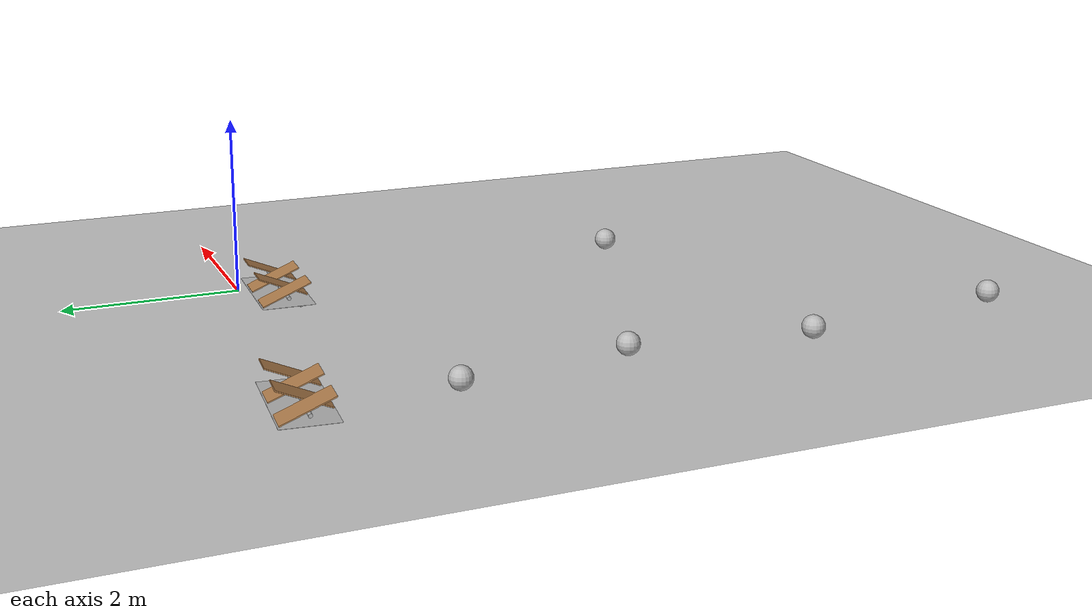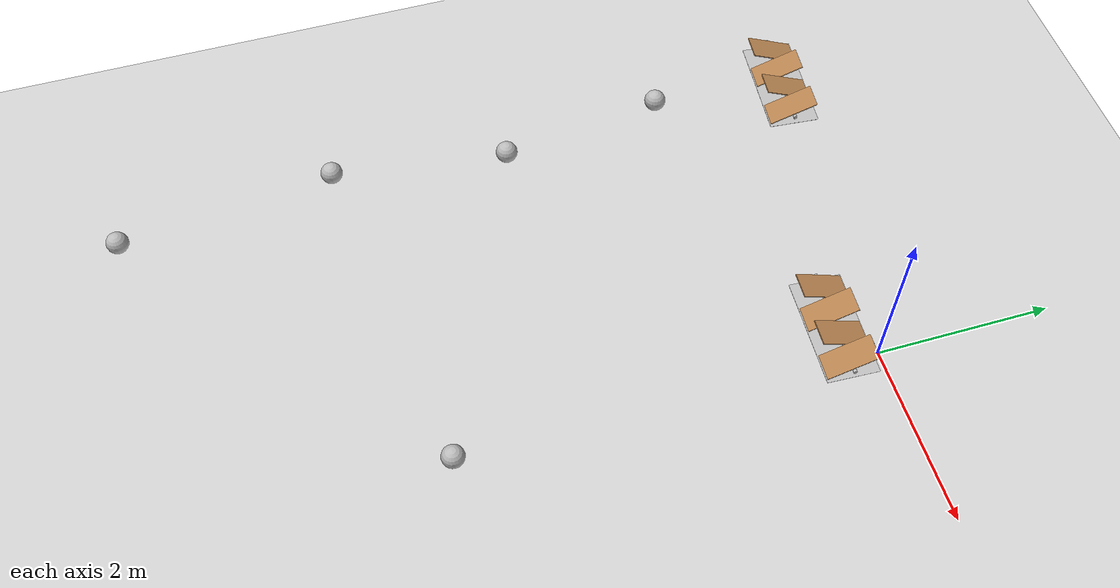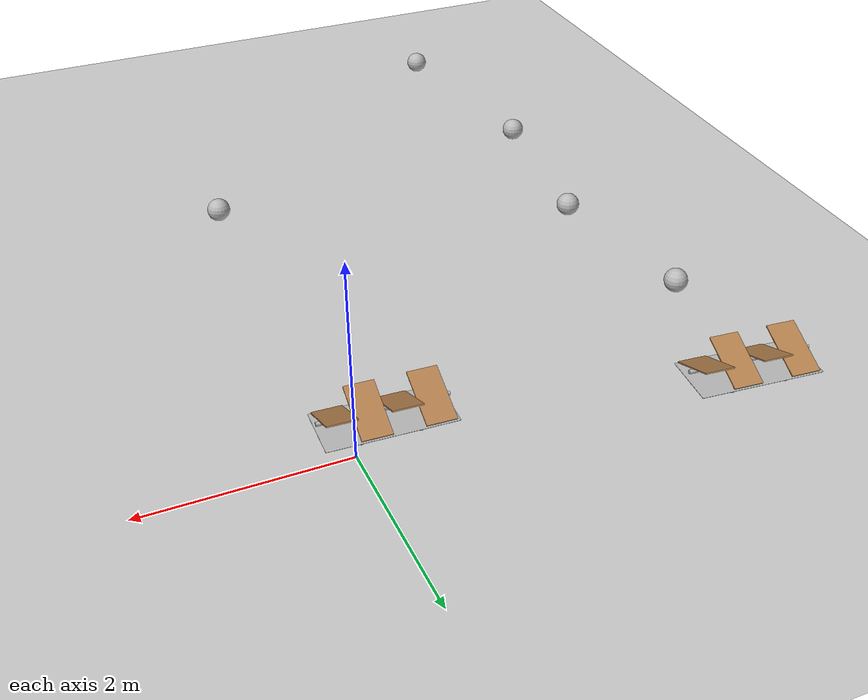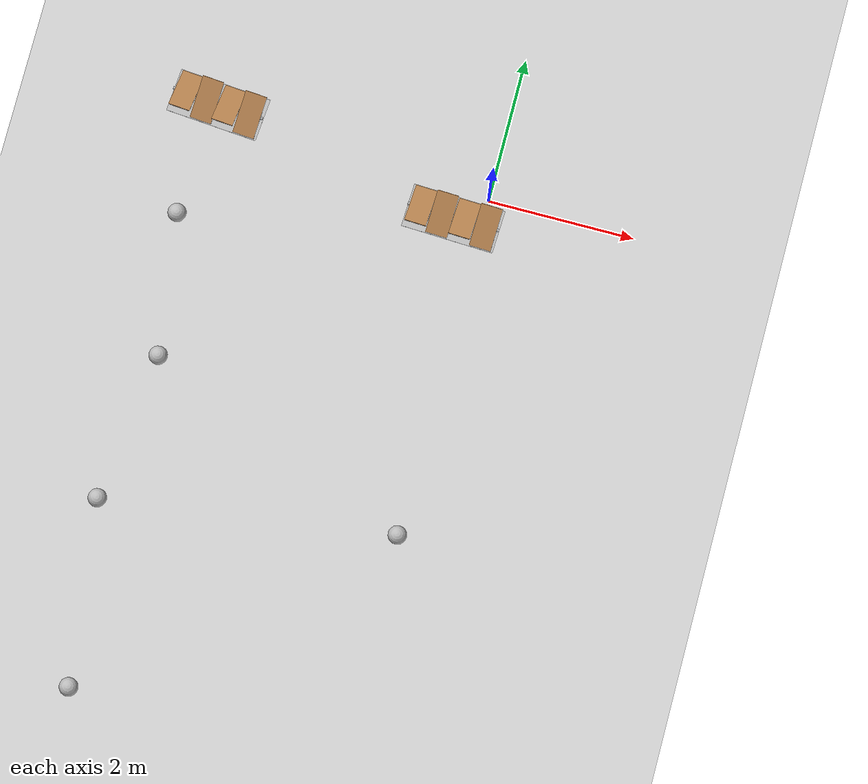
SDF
<sdf version="1.6">
 <world name="default">
  <model name="ground_plane">
   <static>1</static>
   <link name="link">
    <collision name="collision">
     <geometry><plane><normal>0 0 1</normal><size>100 100</size></plane></geometry>
     <surface><friction><ode><mu>100</mu><mu2>50</mu2></ode></friction></surface>
    </collision>
    <visual name="visual">
     <cast_shadows>0</cast_shadows>
     <geometry><plane><normal>0 0 1</normal><size>100 100</size></plane></geometry>
     <material>
      <script><uri>file://media/materials/scripts/gazebo.material</uri><name>Gazebo/Grey</name></script>
     </material>
    </visual>
    <velocity_decay><linear>0</linear><angular>0</angular></velocity_decay>
   </link>
  </model>
  <model name="frc2016_chevaldefrise">
   <link name="base">
    <inertial>
     <mass>10</mass>
     <pose>0 0 0.15672 0 -0 0</pose>
     <inertia><ixx>0.380221</ixx><ixy>0</ixy><ixz>0</ixz><iyy>1.43365</iyy><iyz>0</iyz><izz>1.64745</izz></inertia>
    </inertial>
    <visual name="platform">
     <pose>0 0 0.06968 0 -0 0</pose>
     <geometry><box><size>1.27 0.5969 0.003175</size></box></geometry>
    </visual>
    <collision name="platform">
     <pose>0 0 0.06968 0 -0 0</pose>
     <geometry><box><size>1.27 0.5969 0.003175</size></box></geometry>
    </collision>
    <visual name="bar">
     <pose>0 0 0.16855 0 1.5707 0</pose>
     <geometry><cylinder><radius>0.02108</radius><length>1.273</length></cylinder></geometry>
    </visual>
    <collision name="bar">
     <pose>0 0 0.16855 0 1.5707 0</pose>
     <geometry><cylinder><radius>0.02108</radius><length>1.27</length></cylinder></geometry>
    </collision>
    <visual name="castor1">
     <pose>-0.45653 -0.16581 0.03175 0 -0 0</pose>
     <geometry><sphere><radius>0.03175</radius></sphere></geometry>
    </visual>
    <collision name="castor1">
     <pose>-0.45653 -0.16581 0.03175 0 -0 0</pose>
     <geometry><sphere><radius>0.03175</radius></sphere></geometry>
    </collision>
    <visual name="castor2">
     <pose>-0.27855 0.21408 0.03175 0 -0 0</pose>
     <geometry><sphere><radius>0.03175</radius></sphere></geometry>
    </visual>
    <collision name="castor2">
     <pose>-0.27855 0.21408 0.03175 0 -0 0</pose>
     <geometry><sphere><radius>0.03175</radius></sphere></geometry>
    </collision>
    <visual name="castor3">
     <pose>0.28191 0.21419 0.03175 0 -0 0</pose>
     <geometry><sphere><radius>0.03175</radius></sphere></geometry>
    </visual>
    <collision name="castor3">
     <pose>0.28191 0.21419 0.03175 0 -0 0</pose>
     <geometry><sphere><radius>0.03175</radius></sphere></geometry>
    </collision>
    <visual name="castor4">
     <pose>0.45965 -0.16602 0.03175 0 -0 0</pose>
     <geometry><sphere><radius>0.03175</radius></sphere></geometry>
    </visual>
    <collision name="castor4">
     <pose>0.45965 -0.16602 0.03175 0 -0 0</pose>
     <geometry><sphere><radius>0.03175</radius></sphere></geometry>
    </collision>
   </link>
   <link name="slant1">
    <pose>-0.4572 0.01307 0.1997 -0.39732 0 0</pose>
    <inertial>
     <pose>0 0.1 0 0 -0 0</pose>
     <mass>2</mass>
     <inertia>
      <ixx>0.0606857</ixx>
      <ixy>0</ixy>
      <ixz>0</ixz>
      <iyy>0.0148723</iyy>
      <iyz>0</iyz>
      <izz>0.0755042</izz>
     </inertia>
    </inertial>
    <visual name="visual">
     <geometry><box><size>0.29845 0.593285 0.0127</size></box></geometry>
     <material><script><name>Gazebo/WoodFloor</name><uri>__default__</uri></script></material>
    </visual>
    <collision name="collision"><geometry><box><size>0.29845 0.593285 0.0127</size></box></geometry></collision>
   </link>
   <link name="slant2">
    <pose>-0.1524 -0.01307 0.1997 0.39732 -0 0</pose>
    <inertial>
     <mass>2</mass>
     <pose>0 -0.1 0 0 -0 0</pose>
     <inertia>
      <ixx>0.0606857</ixx>
      <ixy>0</ixy>
      <ixz>0</ixz>
      <iyy>0.0148723</iyy>
      <iyz>0</iyz>
      <izz>0.0755042</izz>
     </inertia>
    </inertial>
    <visual name="visual">
     <geometry><box><size>0.29845 0.593285 0.0127</size></box></geometry>
     <material><script><name>Gazebo/WoodFloor</name><uri>__default__</uri></script></material>
    </visual>
    <collision name="collision"><geometry><box><size>0.29845 0.593285 0.0127</size></box></geometry></collision>
   </link>
   <link name="slant3">
    <pose>0.1524 0.01307 0.1997 -0.39732 0 0</pose>
    <inertial>
     <pose>0 0.1 0 0 -0 0</pose>
     <mass>2</mass>
     <inertia>
      <ixx>0.0606857</ixx>
      <ixy>0</ixy>
      <ixz>0</ixz>
      <iyy>0.0148723</iyy>
      <iyz>0</iyz>
      <izz>0.0755042</izz>
     </inertia>
    </inertial>
    <visual name="visual">
     <geometry><box><size>0.29845 0.593285 0.0127</size></box></geometry>
     <material><script><name>Gazebo/WoodFloor</name><uri>__default__</uri></script></material>
    </visual>
    <collision name="collision"><geometry><box><size>0.29845 0.593285 0.0127</size></box></geometry></collision>
   </link>
   <link name="slant4">
    <pose>0.4572 -0.01307 0.1997 0.39732 -0 0</pose>
    <inertial>
     <pose>0 -0.1 0 0 -0 0</pose>
     <mass>2</mass>
     <inertia>
      <ixx>0.0606857</ixx>
      <ixy>0</ixy>
      <ixz>0</ixz>
      <iyy>0.0148723</iyy>
      <iyz>0</iyz>
      <izz>0.0755042</izz>
     </inertia>
    </inertial>
    <visual name="visual">
     <geometry><box><size>0.29845 0.593285 0.0127</size></box></geometry>
     <material><script><name>Gazebo/WoodFloor</name><uri>__default__</uri></script></material>
    </visual>
    <collision name="collision"><geometry><box><size>0.29845 0.593285 0.0127</size></box></geometry></collision>
   </link>
   <joint name="slant1_joint" type="revolute">
    <parent>base</parent>
    <child>slant1</child>
    <axis>
     <xyz>1 0 0</xyz>
     <limit><lower>0</lower><upper>1.5707</upper></limit>
     <use_parent_model_frame>0</use_parent_model_frame>
     <dynamics><spring_reference>0</spring_reference><spring_stiffness>0</spring_stiffness></dynamics>
    </axis>
   </joint>
   <joint name="slant2_joint" type="revolute">
    <parent>base</parent>
    <child>slant2</child>
    <axis>
     <xyz>1 0 0</xyz>
     <limit><lower>-1.5707</lower><upper>0</upper></limit>
     <use_parent_model_frame>0</use_parent_model_frame>
     <dynamics><spring_reference>0</spring_reference><spring_stiffness>0</spring_stiffness></dynamics>
    </axis>
   </joint>
   <joint name="slant3_joint" type="revolute">
    <parent>base</parent>
    <child>slant3</child>
    <axis>
     <xyz>1 0 0</xyz>
     <limit><lower>0</lower><upper>1.5707</upper></limit>
     <use_parent_model_frame>0</use_parent_model_frame>
     <dynamics><spring_reference>0</spring_reference><spring_stiffness>0</spring_stiffness></dynamics>
    </axis>
   </joint>
   <joint name="slant4_joint" type="revolute">
    <parent>base</parent>
    <child>slant4</child>
    <axis>
     <xyz>1 0 0</xyz>
     <limit><lower>-1.5707</lower><upper>0</upper></limit>
     <use_parent_model_frame>0</use_parent_model_frame>
     <dynamics><spring_reference>0</spring_reference><spring_stiffness>0</spring_stiffness></dynamics>
    </axis>
   </joint>
   <pose>-3.84091 0.341051 -0.000264 0.001236 -0 -0.083997</pose>
  </model>
  <model name="frc2016_ball">
   <pose>-3.67725 -7.70415 0.127 0 -0 0</pose>
   <link name="link">
    <inertial>
     <mass>0.213</mass>
     <inertia>
      <ixx>0.00322667</ixx>
      <ixy>0</ixy>
      <ixz>0</ixz>
      <iyy>0.00322667</iyy>
      <iyz>0</iyz>
      <izz>0.00322667</izz>
     </inertia>
    </inertial>
    <visual name="visual"><geometry><sphere><radius>0.127</radius></sphere></geometry></visual>
    <collision name="collision">
     <geometry><sphere><radius>0.127</radius></sphere></geometry>
     <surface>
      <bounce><restitution_coefficient>0.15937</restitution_coefficient><threshold>0</threshold></bounce>
      <contact><ode><max_vel>100</max_vel><min_depth>0.001</min_depth></ode></contact>
     </surface>
    </collision>
   </link>
  </model>
  <model name="frc2016_ball_0">
   <pose>-3.98166 -5.20879 0.127 0 -0 0</pose>
   <link name="link">
    <inertial>
     <mass>0.213</mass>
     <inertia>
      <ixx>0.00322667</ixx>
      <ixy>0</ixy>
      <ixz>0</ixz>
      <iyy>0.00322667</iyy>
      <iyz>0</iyz>
      <izz>0.00322667</izz>
     </inertia>
    </inertial>
    <visual name="visual"><geometry><sphere><radius>0.127</radius></sphere></geometry></visual>
    <collision name="collision">
     <geometry><sphere><radius>0.127</radius></sphere></geometry>
     <surface>
      <bounce><restitution_coefficient>0.15937</restitution_coefficient><threshold>0</threshold></bounce>
      <contact><ode><max_vel>100</max_vel><min_depth>0.001</min_depth></ode></contact>
     </surface>
    </collision>
   </link>
  </model>
  <model name="frc2016_ball_1">
   <pose>-3.71144 -3.16621 0.127 0 -0 0</pose>
   <link name="link">
    <inertial>
     <mass>0.213</mass>
     <inertia>
      <ixx>0.00322667</ixx>
      <ixy>0</ixy>
      <ixz>0</ixz>
      <iyy>0.00322667</iyy>
      <iyz>0</iyz>
      <izz>0.00322667</izz>
     </inertia>
    </inertial>
    <visual name="visual"><geometry><sphere><radius>0.127</radius></sphere></geometry></visual>
    <collision name="collision">
     <geometry><sphere><radius>0.127</radius></sphere></geometry>
     <surface>
      <bounce><restitution_coefficient>0.15937</restitution_coefficient><threshold>0</threshold></bounce>
      <contact><ode><max_vel>100</max_vel><min_depth>0.001</min_depth></ode></contact>
     </surface>
    </collision>
   </link>
  </model>
  <model name="frc2016_chevaldefrise_0">
   <link name="base">
    <inertial>
     <mass>10</mass>
     <pose>0 0 0.15672 0 -0 0</pose>
     <inertia><ixx>0.380221</ixx><ixy>0</ixy><ixz>0</ixz><iyy>1.43365</iyy><iyz>0</iyz><izz>1.64745</izz></inertia>
    </inertial>
    <visual name="platform">
     <pose>0 0 0.06968 0 -0 0</pose>
     <geometry><box><size>1.27 0.5969 0.003175</size></box></geometry>
    </visual>
    <collision name="platform">
     <pose>0 0 0.06968 0 -0 0</pose>
     <geometry><box><size>1.27 0.5969 0.003175</size></box></geometry>
    </collision>
    <visual name="bar">
     <pose>0 0 0.16855 0 1.5707 0</pose>
     <geometry><cylinder><radius>0.02108</radius><length>1.273</length></cylinder></geometry>
    </visual>
    <collision name="bar">
     <pose>0 0 0.16855 0 1.5707 0</pose>
     <geometry><cylinder><radius>0.02108</radius><length>1.27</length></cylinder></geometry>
    </collision>
    <visual name="castor1">
     <pose>-0.45653 -0.16581 0.03175 0 -0 0</pose>
     <geometry><sphere><radius>0.03175</radius></sphere></geometry>
    </visual>
    <collision name="castor1">
     <pose>-0.45653 -0.16581 0.03175 0 -0 0</pose>
     <geometry><sphere><radius>0.03175</radius></sphere></geometry>
    </collision>
    <visual name="castor2">
     <pose>-0.27855 0.21408 0.03175 0 -0 0</pose>
     <geometry><sphere><radius>0.03175</radius></sphere></geometry>
    </visual>
    <collision name="castor2">
     <pose>-0.27855 0.21408 0.03175 0 -0 0</pose>
     <geometry><sphere><radius>0.03175</radius></sphere></geometry>
    </collision>
    <visual name="castor3">
     <pose>0.28191 0.21419 0.03175 0 -0 0</pose>
     <geometry><sphere><radius>0.03175</radius></sphere></geometry>
    </visual>
    <collision name="castor3">
     <pose>0.28191 0.21419 0.03175 0 -0 0</pose>
     <geometry><sphere><radius>0.03175</radius></sphere></geometry>
    </collision>
    <visual name="castor4">
     <pose>0.45965 -0.16602 0.03175 0 -0 0</pose>
     <geometry><sphere><radius>0.03175</radius></sphere></geometry>
    </visual>
    <collision name="castor4">
     <pose>0.45965 -0.16602 0.03175 0 -0 0</pose>
     <geometry><sphere><radius>0.03175</radius></sphere></geometry>
    </collision>
   </link>
   <link name="slant1">
    <pose>-0.4572 0.01307 0.1997 -0.39732 0 0</pose>
    <inertial>
     <pose>0 0.1 0 0 -0 0</pose>
     <mass>2</mass>
     <inertia>
      <ixx>0.0606857</ixx>
      <ixy>0</ixy>
      <ixz>0</ixz>
      <iyy>0.0148723</iyy>
      <iyz>0</iyz>
      <izz>0.0755042</izz>
     </inertia>
    </inertial>
    <visual name="visual">
     <geometry><box><size>0.29845 0.593285 0.0127</size></box></geometry>
     <material><script><name>Gazebo/WoodFloor</name><uri>__default__</uri></script></material>
    </visual>
    <collision name="collision"><geometry><box><size>0.29845 0.593285 0.0127</size></box></geometry></collision>
   </link>
   <link name="slant2">
    <pose>-0.1524 -0.01307 0.1997 0.39732 -0 0</pose>
    <inertial>
     <mass>2</mass>
     <pose>0 -0.1 0 0 -0 0</pose>
     <inertia>
      <ixx>0.0606857</ixx>
      <ixy>0</ixy>
      <ixz>0</ixz>
      <iyy>0.0148723</iyy>
      <iyz>0</iyz>
      <izz>0.0755042</izz>
     </inertia>
    </inertial>
    <visual name="visual">
     <geometry><box><size>0.29845 0.593285 0.0127</size></box></geometry>
     <material><script><name>Gazebo/WoodFloor</name><uri>__default__</uri></script></material>
    </visual>
    <collision name="collision"><geometry><box><size>0.29845 0.593285 0.0127</size></box></geometry></collision>
   </link>
   <link name="slant3">
    <pose>0.1524 0.01307 0.1997 -0.39732 0 0</pose>
    <inertial>
     <pose>0 0.1 0 0 -0 0</pose>
     <mass>2</mass>
     <inertia>
      <ixx>0.0606857</ixx>
      <ixy>0</ixy>
      <ixz>0</ixz>
      <iyy>0.0148723</iyy>
      <iyz>0</iyz>
      <izz>0.0755042</izz>
     </inertia>
    </inertial>
    <visual name="visual">
     <geometry><box><size>0.29845 0.593285 0.0127</size></box></geometry>
     <material><script><name>Gazebo/WoodFloor</name><uri>__default__</uri></script></material>
    </visual>
    <collision name="collision"><geometry><box><size>0.29845 0.593285 0.0127</size></box></geometry></collision>
   </link>
   <link name="slant4">
    <pose>0.4572 -0.01307 0.1997 0.39732 -0 0</pose>
    <inertial>
     <pose>0 -0.1 0 0 -0 0</pose>
     <mass>2</mass>
     <inertia>
      <ixx>0.0606857</ixx>
      <ixy>0</ixy>
      <ixz>0</ixz>
      <iyy>0.0148723</iyy>
      <iyz>0</iyz>
      <izz>0.0755042</izz>
     </inertia>
    </inertial>
    <visual name="visual">
     <geometry><box><size>0.29845 0.593285 0.0127</size></box></geometry>
     <material><script><name>Gazebo/WoodFloor</name><uri>__default__</uri></script></material>
    </visual>
    <collision name="collision"><geometry><box><size>0.29845 0.593285 0.0127</size></box></geometry></collision>
   </link>
   <joint name="slant1_joint" type="revolute">
    <parent>base</parent>
    <child>slant1</child>
    <axis>
     <xyz>1 0 0</xyz>
     <limit><lower>0</lower><upper>1.5707</upper></limit>
     <use_parent_model_frame>0</use_parent_model_frame>
     <dynamics><spring_reference>0</spring_reference><spring_stiffness>0</spring_stiffness></dynamics>
    </axis>
   </joint>
   <joint name="slant2_joint" type="revolute">
    <parent>base</parent>
    <child>slant2</child>
    <axis>
     <xyz>1 0 0</xyz>
     <limit><lower>-1.5707</lower><upper>0</upper></limit>
     <use_parent_model_frame>0</use_parent_model_frame>
     <dynamics><spring_reference>0</spring_reference><spring_stiffness>0</spring_stiffness></dynamics>
    </axis>
   </joint>
   <joint name="slant3_joint" type="revolute">
    <parent>base</parent>
    <child>slant3</child>
    <axis>
     <xyz>1 0 0</xyz>
     <limit><lower>0</lower><upper>1.5707</upper></limit>
     <use_parent_model_frame>0</use_parent_model_frame>
     <dynamics><spring_reference>0</spring_reference><spring_stiffness>0</spring_stiffness></dynamics>
    </axis>
   </joint>
   <joint name="slant4_joint" type="revolute">
    <parent>base</parent>
    <child>slant4</child>
    <axis>
     <xyz>1 0 0</xyz>
     <limit><lower>-1.5707</lower><upper>0</upper></limit>
     <use_parent_model_frame>0</use_parent_model_frame>
     <dynamics><spring_reference>0</spring_reference><spring_stiffness>0</spring_stiffness></dynamics>
    </axis>
   </joint>
   <pose>-0.398484 -0.358709 -0.000111 -0.000672 0 -0.043597</pose>
  </model>
  <model name="frc2016_ball_4">
   <pose>-3.98224 -1.23551 0.127 0 -0 0</pose>
   <link name="link">
    <inertial>
     <mass>0.213</mass>
     <inertia>
      <ixx>0.00322667</ixx>
      <ixy>0</ixy>
      <ixz>0</ixz>
      <iyy>0.00322667</iyy>
      <iyz>0</iyz>
      <izz>0.00322667</izz>
     </inertia>
    </inertial>
    <visual name="visual"><geometry><sphere><radius>0.127</radius></sphere></geometry></visual>
    <collision name="collision">
     <geometry><sphere><radius>0.127</radius></sphere></geometry>
     <surface>
      <bounce><restitution_coefficient>0.15937</restitution_coefficient><threshold>0</threshold></bounce>
      <contact><ode><max_vel>100</max_vel><min_depth>0.001</min_depth></ode></contact>
     </surface>
    </collision>
   </link>
  </model>
  <model name="frc2016_ball_6">
   <pose>-0.035039 -4.67394 0.127 0 -0 0</pose>
   <link name="link">
    <inertial>
     <mass>0.213</mass>
     <inertia>
      <ixx>0.00322667</ixx>
      <ixy>0</ixy>
      <ixz>0</ixz>
      <iyy>0.00322667</iyy>
      <iyz>0</iyz>
      <izz>0.00322667</izz>
     </inertia>
    </inertial>
    <visual name="visual"><geometry><sphere><radius>0.127</radius></sphere></geometry></visual>
    <collision name="collision">
     <geometry><sphere><radius>0.127</radius></sphere></geometry>
     <surface>
      <bounce><restitution_coefficient>0.15937</restitution_coefficient><threshold>0</threshold></bounce>
      <contact><ode><max_vel>100</max_vel><min_depth>0.001</min_depth></ode></contact>
     </surface>
    </collision>
   </link>
  </model>
 </world>
</sdf>
